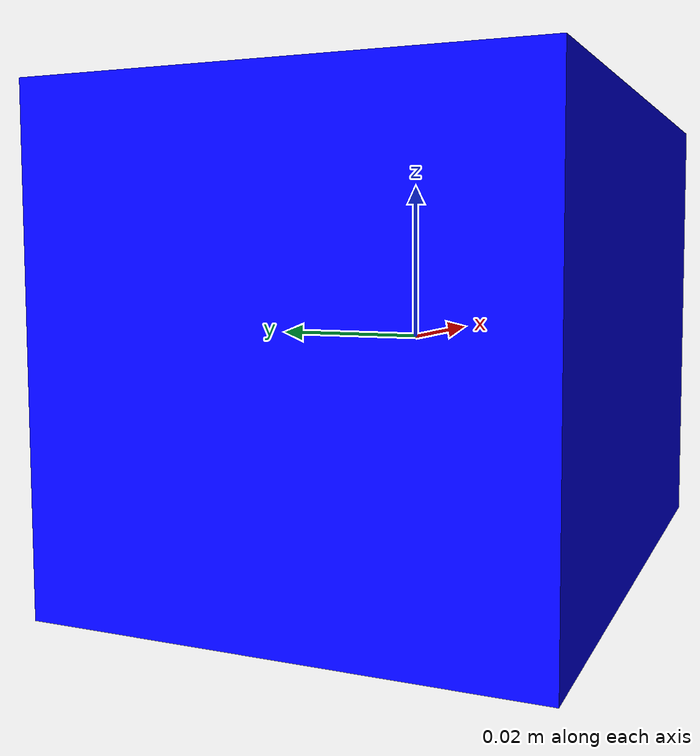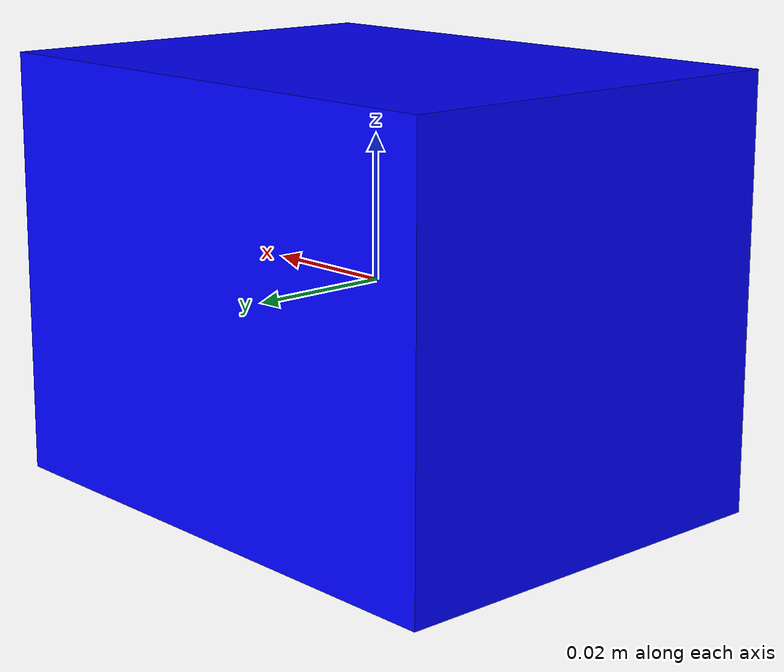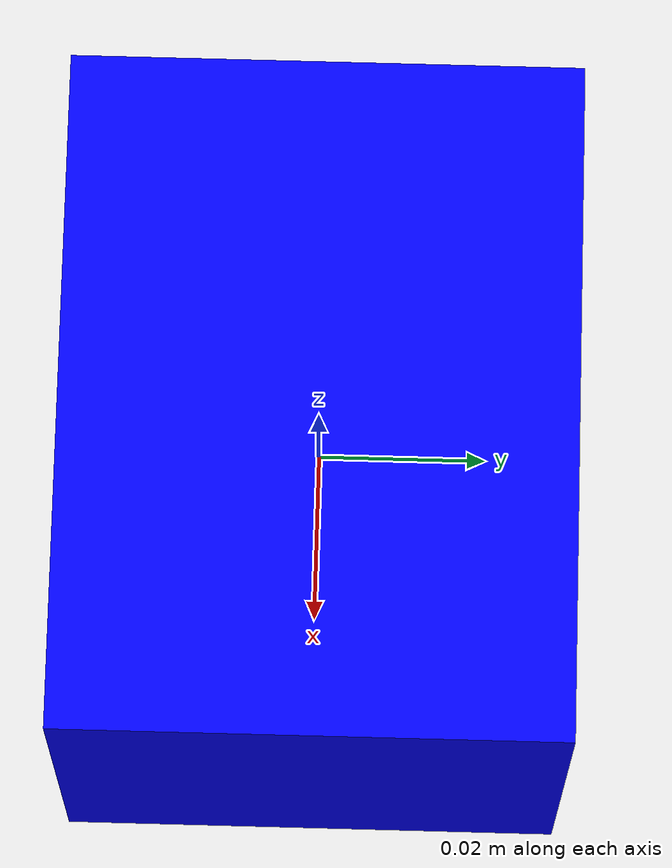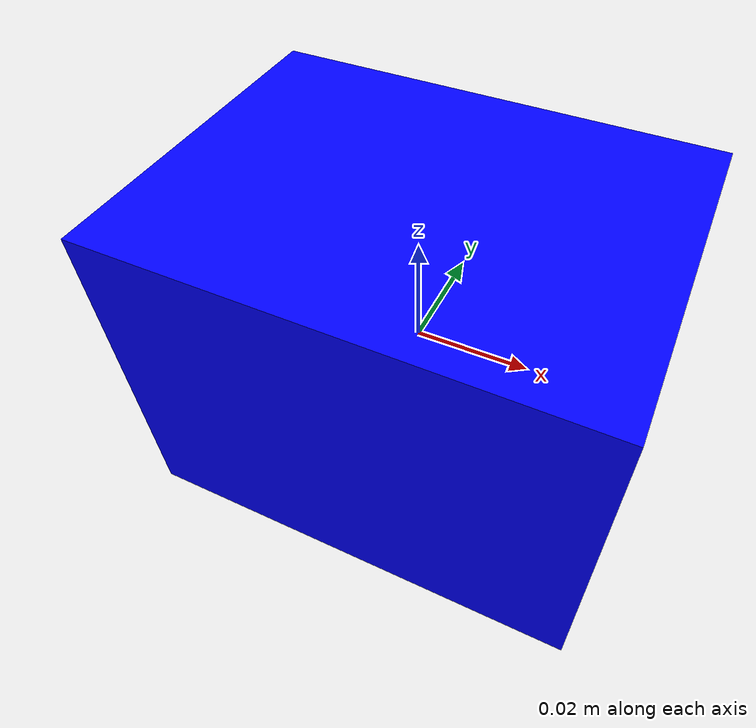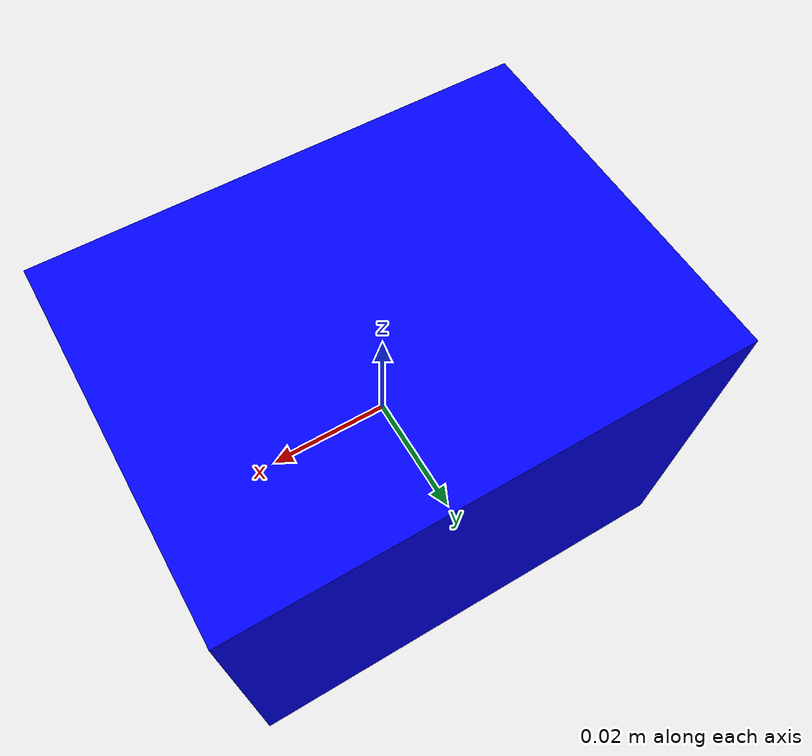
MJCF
<mujoco model="blue_cube">

    <worldbody>
        <body name="blue_cube">
            <freejoint/>

            <geom name="blue_cube_geom"
                  type="box"
                  size="0.04 0.03 0.03"
                  density="1000"
                  friction="0.95 0.3 0.1"
                  solimp="0.998 0.998 0.001"
                  solref="0.001 1"
                  rgba="0 0 1 1"/>

            <!-- 顶部 site（蓝） -->
            <site name="top_site_blue_cube"
                  pos="0 0 0.03"
                  size="0.005"
                  rgba="0 0 0 0" />

            <!-- 底部 site（蓝） -->
            <site name="bottom_site_blue_cube"
                  pos="0 0 -0.03"
                  size="0.005"
                  rgba="0 0 0 0" />

            <!-- 侧面 site（蓝） -->
            <site name="side_site_blue_cube"
                  pos="0.03 0 0"
                  size="0.005"
                  rgba="0 0 0 0" />
        </body>
    </worldbody>

</mujoco>
